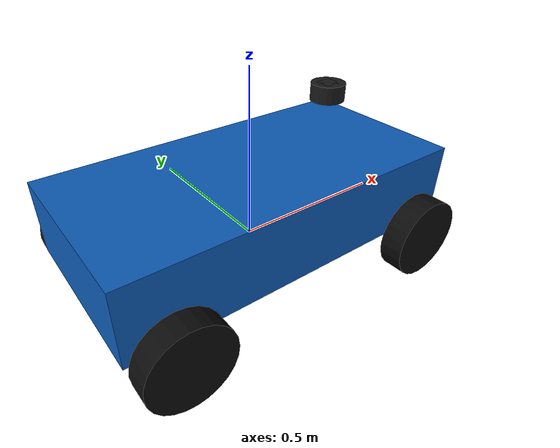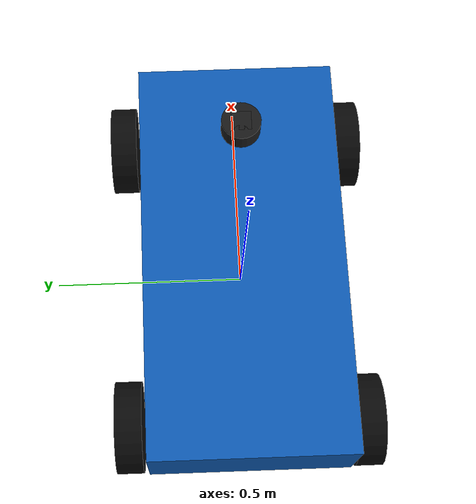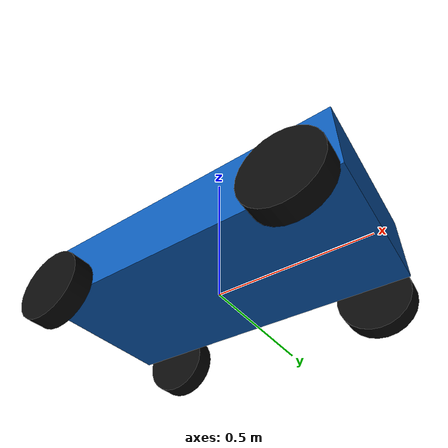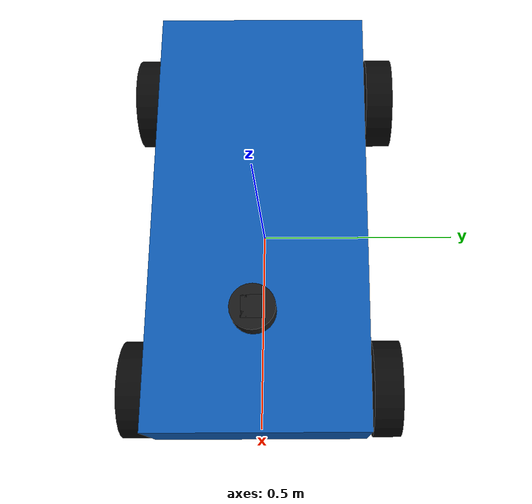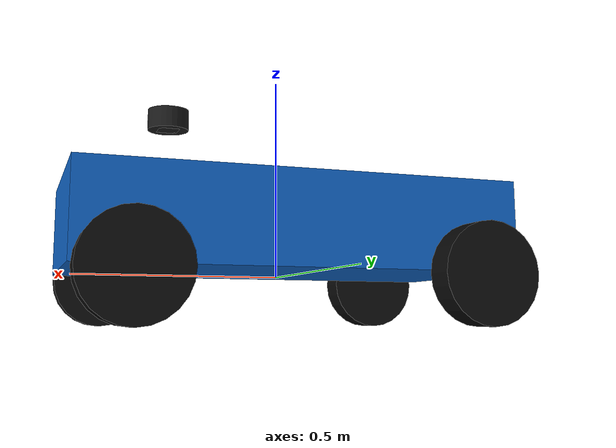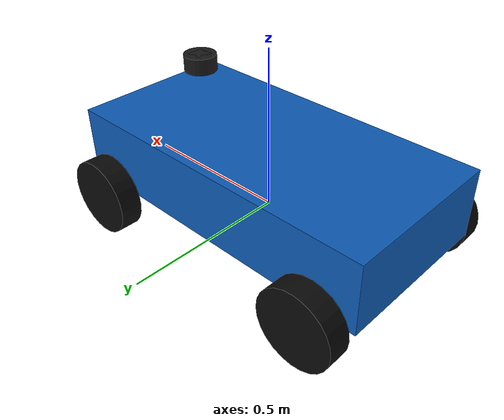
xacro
<?xml version="1.0"?>
<robot xmlns:xacro="http://www.ros.org/wiki/xacro" name="course_ackermann">

  <!-- Vehicle Parameters -->
  <xacro:property name="wheel_base" value="0.8"/>
  <xacro:property name="wheel_separation" value="0.62"/>
  <xacro:property name="wheel_radius" value="0.12"/>
  <xacro:property name="wheel_width" value="0.07"/>
  <xacro:property name="body_length" value="1.05"/>
  <xacro:property name="body_width" value="0.52"/>
  <xacro:property name="body_height" value="0.22"/>
  <xacro:property name="body_elevation" value="0.12"/>
  <xacro:property name="base_mass" value="12.0"/>
  <xacro:property name="wheel_mass" value="0.8"/>
  <xacro:property name="knuckle_mass" value="0.2"/>
  <xacro:property name="sensor_x" value="0.28"/>
  <xacro:property name="sensor_y" value="0.0"/>
  <xacro:property name="sensor_z" value="0.38"/>

  <!-- Materials -->
  <material name="chassis_blue">
    <color rgba="0.05 0.36 0.72 1.0"/>
  </material>
  <material name="wheel_dark">
    <color rgba="0.04 0.04 0.04 1.0"/>
  </material>
  <material name="sensor_black">
    <color rgba="0.1 0.1 0.1 1.0"/>
  </material>
  <material name="sensor_red">
    <color rgba="0.8 0.1 0.1 1.0"/>
  </material>

  <!-- Base Link -->
  <link name="base_link">
    <inertial>
      <origin xyz="0 0 ${body_elevation}" rpy="0 0 0"/>
      <mass value="${base_mass}"/>
      <inertia ixx="0.55" iyy="1.10" izz="1.40" ixy="0.0" ixz="0.0" iyz="0.0"/>
    </inertial>
    <visual>
      <origin xyz="0 0 ${body_elevation}" rpy="0 0 0"/>
      <geometry>
        <box size="${body_length} ${body_width} ${body_height}"/>
      </geometry>
      <material name="chassis_blue"/>
    </visual>
    <collision>
      <origin xyz="0 0 ${body_elevation}" rpy="0 0 0"/>
      <geometry>
        <box size="${body_length} ${body_width} ${body_height}"/>
      </geometry>
    </collision>
  </link>

  <!-- Macro for wheel cylinder inertia -->
  <xacro:macro name="cylinder_inertia" params="m r h">
    <inertial>
      <origin xyz="0 0 0" rpy="${pi/2} 0 0"/>
      <mass value="${m}"/>
      <inertia ixx="${m*(3*r*r+h*h)/12}" iyy="${m*r*r/2}" izz="${m*(3*r*r+h*h)/12}" ixy="0" ixz="0" iyz="0"/>
    </inertial>
  </xacro:macro>

  <!-- Steering Knuckles (Front) -->
  <link name="front_left_knuckle">
    <inertial>
      <origin xyz="0 0 0" rpy="0 0 0"/>
      <mass value="${knuckle_mass}"/>
      <inertia ixx="0.001" iyy="0.001" izz="0.001" ixy="0.0" ixz="0.0" iyz="0.0"/>
    </inertial>
  </link>
  <joint name="front_left_steering_joint" type="revolute">
    <parent link="base_link"/>
    <child link="front_left_knuckle"/>
    <origin xyz="${wheel_base / 2.0} ${wheel_separation / 2.0} 0" rpy="0 0 0"/>
    <axis xyz="0 0 1"/>
    <limit lower="-0.55" upper="0.55" effort="25.0" velocity="2.0"/>
  </joint>

  <link name="front_right_knuckle">
    <inertial>
      <origin xyz="0 0 0" rpy="0 0 0"/>
      <mass value="${knuckle_mass}"/>
      <inertia ixx="0.001" iyy="0.001" izz="0.001" ixy="0.0" ixz="0.0" iyz="0.0"/>
    </inertial>
  </link>
  <joint name="front_right_steering_joint" type="revolute">
    <parent link="base_link"/>
    <child link="front_right_knuckle"/>
    <origin xyz="${wheel_base / 2.0} ${-wheel_separation / 2.0} 0" rpy="0 0 0"/>
    <axis xyz="0 0 1"/>
    <limit lower="-0.55" upper="0.55" effort="25.0" velocity="2.0"/>
  </joint>

  <!-- Wheel Macro -->
  <xacro:macro name="wheel" params="prefix parent x y is_front">
    <link name="${prefix}_wheel">
      <xacro:cylinder_inertia m="${wheel_mass}" r="${wheel_radius}" h="${wheel_width}"/>
      <visual>
        <origin xyz="0 0 0" rpy="${pi/2} 0 0"/>
        <geometry>
          <cylinder radius="${wheel_radius}" length="${wheel_width}"/>
        </geometry>
        <material name="wheel_dark"/>
      </visual>
      <collision>
        <origin xyz="0 0 0" rpy="${pi/2} 0 0"/>
        <geometry>
          <cylinder radius="${wheel_radius}" length="${wheel_width}"/>
        </geometry>
      </collision>
    </link>

    <joint name="${prefix}_wheel_joint" type="continuous">
      <parent link="${parent}"/>
      <child link="${prefix}_wheel"/>
      <xacro:if value="${is_front}">
        <origin xyz="0 0 0" rpy="0 0 0"/>
      </xacro:if>
      <xacro:unless value="${is_front}">
        <origin xyz="${x} ${y} 0" rpy="0 0 0"/>
      </xacro:unless>
      <axis xyz="0 1 0"/>
      <limit effort="25.0" velocity="20.0"/>
    </joint>
  </xacro:macro>

  <xacro:wheel prefix="front_left" parent="front_left_knuckle" x="${wheel_base/2}" y="${wheel_separation/2}" is_front="true"/>
  <xacro:wheel prefix="front_right" parent="front_right_knuckle" x="${wheel_base/2}" y="${-wheel_separation/2}" is_front="true"/>
  <xacro:wheel prefix="rear_left" parent="base_link" x="${-wheel_base/2}" y="${wheel_separation/2}" is_front="false"/>
  <xacro:wheel prefix="rear_right" parent="base_link" x="${-wheel_base/2}" y="${-wheel_separation/2}" is_front="false"/>

  <!-- Sensors attached to base_link -->
  <!-- Camera -->
  <link name="camera_link">
    <inertial>
      <origin xyz="0 0 0" rpy="0 0 0"/>
      <mass value="0.033333333333"/>
      <inertia ixx="0.000333333333" iyy="0.000333333333" izz="0.000333333333" ixy="0.0" ixz="0.0" iyz="0.0"/>
    </inertial>
    <visual>
      <origin xyz="0 0 0" rpy="0 0 0"/>
      <geometry>
        <box size="0.05 0.05 0.05"/>
      </geometry>
      <material name="sensor_black"/>
    </visual>
    <collision>
      <origin xyz="0 0 0" rpy="0 0 0"/>
      <geometry>
        <box size="0.05 0.05 0.05"/>
      </geometry>
    </collision>
  </link>
  <joint name="camera_joint" type="fixed">
    <parent link="base_link"/>
    <child link="camera_link"/>
    <origin xyz="${sensor_x} ${sensor_y} ${sensor_z}" rpy="0 0 0"/>
  </joint>

  <!-- Lidar -->
  <link name="lidar_link">
    <inertial>
      <origin xyz="0 0 0" rpy="0 0 0"/>
      <mass value="0.033333333333"/>
      <inertia ixx="0.000333333333" iyy="0.000333333333" izz="0.000333333333" ixy="0.0" ixz="0.0" iyz="0.0"/>
    </inertial>
    <visual>
      <origin xyz="0 0 0" rpy="0 0 0"/>
      <geometry>
        <cylinder radius="0.05" length="0.05"/>
      </geometry>
      <material name="sensor_black"/>
    </visual>
    <collision>
      <origin xyz="0 0 0" rpy="0 0 0"/>
      <geometry>
        <cylinder radius="0.05" length="0.05"/>
      </geometry>
    </collision>
  </link>
  <joint name="lidar_joint" type="fixed">
    <parent link="base_link"/>
    <child link="lidar_link"/>
    <origin xyz="${sensor_x} ${sensor_y} ${sensor_z}" rpy="0 0 0"/>
  </joint>

  <!-- IMU -->
  <link name="imu_link">
    <inertial>
      <origin xyz="0 0 0" rpy="0 0 0"/>
      <mass value="0.033333333334"/>
      <inertia ixx="0.000333333334" iyy="0.000333333334" izz="0.000333333334" ixy="0.0" ixz="0.0" iyz="0.0"/>
    </inertial>
    <visual>
      <origin xyz="0 0 0" rpy="0 0 0"/>
      <geometry>
        <box size="0.02 0.02 0.01"/>
      </geometry>
      <material name="sensor_red"/>
    </visual>
    <collision>
      <origin xyz="0 0 0" rpy="0 0 0"/>
      <geometry>
        <box size="0.02 0.02 0.01"/>
      </geometry>
    </collision>
  </link>
  <joint name="imu_joint" type="fixed">
    <parent link="base_link"/>
    <child link="imu_link"/>
    <origin xyz="${sensor_x} ${sensor_y} ${sensor_z}" rpy="0 0 0"/>
  </joint>

</robot>
